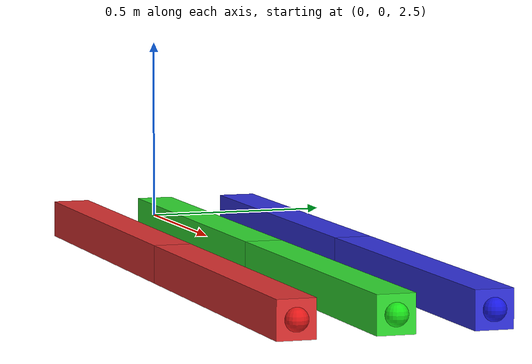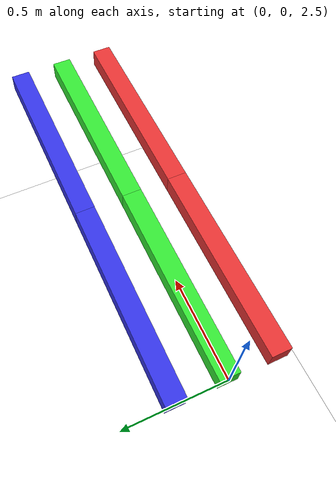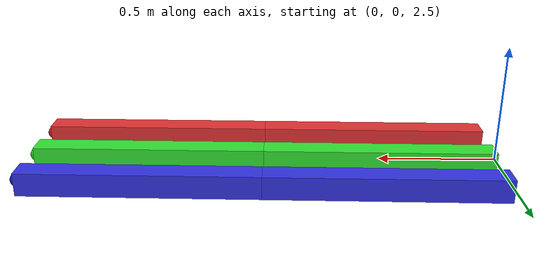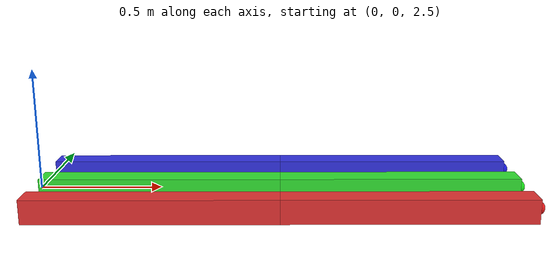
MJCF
<mujoco model="double_pendulum_3regimes">
  <!-- Stable, fine integration for stick–slip capture -->
  <option timestep="0.002" integrator="RK4" gravity="0 0 -9.81" />
  <!-- Use radians to match ML training conventions -->
  <compiler angle="radian" coordinate="local" />

  <!-- ===== Presets for loss regimes ===== -->
  <default>
    <!-- Baseline geometry/inertia style -->
    <default class="geom_base">
      <geom friction="0.8 0.1 0.01" rgba="0.9 0.2 0.2 1" density="800"/>
    </default>

    <!-- IDEAL: no damping, no stiction -->
    <default class="ideal">
      <joint damping="0.0" frictionloss="0.0" armature="0.0"/>
    </default>

    <!-- VISCOUS only: smooth dissipation (unused here, kept for future) -->
    <default class="viscous">
      <joint damping="0.04" frictionloss="0.0" armature="0.0"/>
    </default>

    <!-- STICTION sets: (unused here, kept for future) -->
    <default class="stiction_low">
      <joint damping="0.02" frictionloss="0.03" armature="0.0"/>
    </default>
    <default class="stiction_med">
      <joint damping="0.02" frictionloss="0.07" armature="0.0"/>
    </default>
    <default class="stiction_high">
      <joint damping="0.02" frictionloss="0.12" armature="0.0"/>
    </default>
  </default>

  <!-- ===== Assets (unchanged visuals) ===== -->
  <asset>
    <texture name="grid" type="2d" builtin="checker" width="512" height="512"
             rgb1="0.92 0.92 0.92" rgb2="0.82 0.82 0.82" />
    <material name="mat_grid" texture="grid" texrepeat="8 8" reflectance="0.0" rgba="1 1 1 1"/>
  </asset>

  <worldbody>
    <light name="top_key" pos="0 0 2.5" dir="0 0 -1"
           diffuse="1 1 1" specular="0.2 0.2 0.2" directional="true"/>
    <light name="fill" pos="2 -2 1.5" dir="-1 1 -0.5"
           diffuse="0.6 0.6 0.6" specular="0.1 0.1 0.1" directional="true"/>
    <geom name="floor" type="plane" size="6 6 0.1" pos="0 0 0"
          material="mat_grid" rgba="1 1 1 1"/>

    <!-- Camera pulled back a bit to see all three -->
    <camera name="iso" pos="3.5 -3.0 2.0"
            xyaxes="0.707 0.707 0  -0.408 0.408 0.816" />

        <!-- Pendulum A (FRONT) -->
    <body name="pend_A" pos="0 -0.25 2.5">
      <joint name="joint1_A" type="hinge" class="ideal" axis="0 1 0" pos="0 0 0"/>

      <!-- Link 1 -->
      <geom class="geom_base" type="box" size=".5 .05 .05" pos=".5 0 0"
            rgba="0.9 0.2 0.2 1"/>  <!-- red -->

      <body name="pend_A_link2" pos="1 0 0">
        <joint name="joint2_A" type="hinge" class="ideal" axis="0 1 0" pos="0 0 0"/>

        <geom class="geom_base" type="box" size=".5 .05 .05" pos=".5 0 0"
              rgba="0.9 0.2 0.2 1"/>
        <geom name="tip_marker_A" type="sphere" size="0.03" pos="1.0 0 0" rgba="0.9 0.1 0.1 1"/>
      </body>
    </body>

    <!-- Pendulum B (MIDDLE) -->
    <body name="pend_B" pos="0 0 2.5">
      <joint name="joint1_B" type="hinge" class="ideal" axis="0 1 0" pos="0 0 0"/>

      <geom class="geom_base" type="box" size=".5 .05 .05" pos=".5 0 0"
            rgba="0.2 0.9 0.2 1"/>  <!-- green -->

      <body name="pend_B_link2" pos="1 0 0">
        <joint name="joint2_B" type="hinge" class="ideal" axis="0 1 0" pos="0 0 0"/>

        <geom class="geom_base" type="box" size=".5 .05 .05" pos=".5 0 0"
              rgba="0.2 0.9 0.2 1"/>
        <geom name="tip_marker_B" type="sphere" size="0.03" pos="1.0 0 0" rgba="0.1 0.9 0.1 1"/>
      </body>
    </body>

    <!-- Pendulum C (BACK) -->
    <body name="pend_C" pos="0 0.25 2.5">
      <joint name="joint1_C" type="hinge" class="ideal" axis="0 1 0" pos="0 0 0"/>

      <geom class="geom_base" type="box" size=".5 .05 .05" pos=".5 0 0"
            rgba="0.2 0.2 0.9 1"/>  <!-- blue -->

      <body name="pend_C_link2" pos="1 0 0">
        <joint name="joint2_C" type="hinge" class="ideal" axis="0 1 0" pos="0 0 0"/>

        <geom class="geom_base" type="box" size=".5 .05 .05" pos=".5 0 0"
              rgba="0.2 0.2 0.9 1"/>
        <geom name="tip_marker_C" type="sphere" size="0.03" pos="1.0 0 0" rgba="0.1 0.1 0.9 1"/>
      </body>
    </body>

  </worldbody>

  <!-- Actuators for each pendulum (zero by default; can be used later) -->
  <actuator>
    <motor name="m1_A" joint="joint1_A" gear="1" ctrllimited="true" ctrlrange="-5 5"/>
    <motor name="m2_A" joint="joint2_A" gear="1" ctrllimited="true" ctrlrange="-5 5"/>

    <motor name="m1_B" joint="joint1_B" gear="1" ctrllimited="true" ctrlrange="-5 5"/>
    <motor name="m2_B" joint="joint2_B" gear="1" ctrllimited="true" ctrlrange="-5 5"/>

    <motor name="m1_C" joint="joint1_C" gear="1" ctrllimited="true" ctrlrange="-5 5"/>
    <motor name="m2_C" joint="joint2_C" gear="1" ctrllimited="true" ctrlrange="-5 5"/>
  </actuator>

  <!-- ===== Sensors for data logging (per pendulum) ===== -->
  <sensor>
    <!-- Pendulum A -->
    <jointpos    name="t1_A" joint="joint1_A"/>
    <jointpos    name="t2_A" joint="joint2_A"/>
    <jointvel    name="w1_A" joint="joint1_A"/>
    <jointvel    name="w2_A" joint="joint2_A"/>
    <actuatorfrc name="u1_A" actuator="m1_A"/>
    <actuatorfrc name="u2_A" actuator="m2_A"/>

    <!-- Pendulum B -->
    <jointpos    name="t1_B" joint="joint1_B"/>
    <jointpos    name="t2_B" joint="joint2_B"/>
    <jointvel    name="w1_B" joint="joint1_B"/>
    <jointvel    name="w2_B" joint="joint2_B"/>
    <actuatorfrc name="u1_B" actuator="m1_B"/>
    <actuatorfrc name="u2_B" actuator="m2_B"/>

    <!-- Pendulum C -->
    <jointpos    name="t1_C" joint="joint1_C"/>
    <jointpos    name="t2_C" joint="joint2_C"/>
    <jointvel    name="w1_C" joint="joint1_C"/>
    <jointvel    name="w2_C" joint="joint2_C"/>
    <actuatorfrc name="u1_C" actuator="m1_C"/>
    <actuatorfrc name="u2_C" actuator="m2_C"/>
  </sensor>

  <!-- Convenient start pose: same (q1,q2) for all 3 pendulums -->
  <!-- Order is [joint1_A, joint2_A, joint1_B, joint2_B, joint1_C, joint2_C] -->
  <keyframe>
    <key name="rest_all"
         qpos="1.5707963 0.0  1.5707963 0.0  1.5707963 0.0"
         qvel="0 0 0 0 0 0"/>
  </keyframe>
</mujoco>
